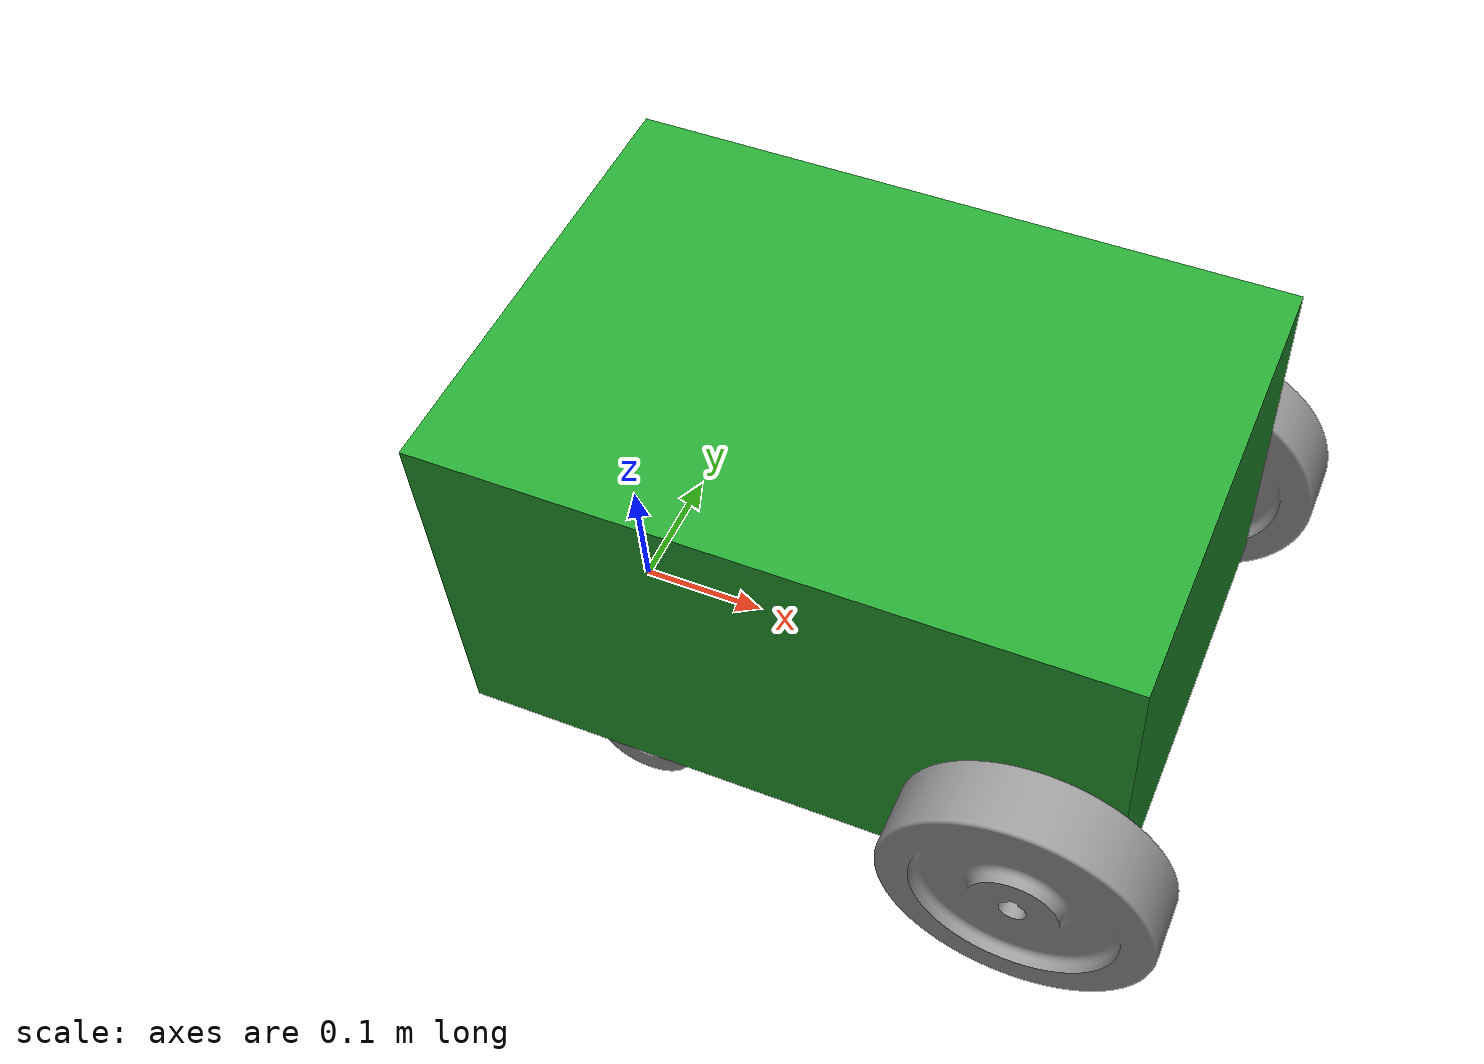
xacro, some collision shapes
<?xml version="1.0"?>

<robot xmlns:xacro="http://www.ros.org/wiki/xacro">

    <xacro:property name="base_length" value="1.18" />
    <xacro:property name="base_width" value="0.3" />
    <xacro:property name="base_height" value="0.001" />
    <xacro:property name="wheel_radius" value="0.1" />
    <xacro:property name="wheel_length" value="0.05" />

    <link name="base_link">
        <visual>
            <geometry>
                <mesh filename="package://my_robot_description/urdf/Chassis2.stl" scale="0.001 0.001 0.001" />
            </geometry>
            <origin xyz="0 0 ${base_height / 2}" rpy="0 0 1.57" />
            <material name="green" />
        </visual>

        <collision>
            <geometry>
                <box size="0.35 0.5 0.28" />
            </geometry>
            <origin xyz="0.2 0 0.08" rpy="0 0 1.57" />

        </collision>

        <inertial>
            <mass value="30" />
            <inertia ixx="372139.2" ixy="-347.727" ixz="350.64" iyy="258387.4" iyz="14259.7" izz="447654.2" />
        </inertial>

    </link>

    <xacro:macro name="wheel_link" params="prefix">
        <link name="${prefix}_wheel_link">
            <visual>
                <geometry>
                    <mesh filename="package://my_robot_description/urdf/rear_wheel.stl" scale="0.001 0.001 0.001" />
                </geometry>
                <origin xyz="0 0 0" rpy="${pi / 2} 0 0" />
                <material name="grey" />
            </visual>

            <collision>
                <geometry>
                    <box size="0.2 0.2 0.2" />
                </geometry>
                <origin xyz="0 0 0" rpy="0 0 0" />
            </collision>

            <inertial>
                <mass value="1" />
                <inertia ixx="14346.1" ixy="0" ixz="0" iyy="7606" iyz="0" izz="7606" />
            </inertial>

        </link>

    </xacro:macro>

    <xacro:wheel_link prefix="left" />
    <xacro:wheel_link prefix="right" />

    <link name="fourth_link">
        <visual>
            <geometry>
                <mesh filename="package://my_robot_description/urdf/front_wheel.stl" scale="0.001 0.001 0.001" />
            </geometry>
            <origin xyz="0 0 0" rpy="1.57 0 0" />
            <material name="grey" />
        </visual>

            <collision>
                <geometry>
                    <box size="0.2 0.2 0.2" />
                </geometry>
            <origin xyz="0 0 0" rpy="0 0 0" />
            </collision>

        <inertial>
            <mass value="2" />
            <inertia ixx="112.3" ixy="0" ixz="0" iyy="112" iyz="0" izz="197" />
        </inertial>

    </link>

    <link name="fifth_link">
        <visual>
            <geometry>
                <mesh filename="package://my_robot_description/urdf/front_wheel.stl" scale="0.001 0.001 0.001" />
            </geometry>
            <origin xyz="0 0 0" rpy="1.57 0 0" />
            <material name="grey" />
        </visual>

            <collision>
                <geometry>
                    <box size="0.2 0.2 0.2" />
                </geometry>
            <origin xyz="0 0 0" rpy="0 0 0" />
            </collision>

        <inertial>
            <mass value="2" />
            <inertia ixx="1" ixy="0" ixz="0" iyy="1" iyz="0" izz="1" />
        </inertial>

    </link>

    <link name="base_footprint" />

    <joint name="base_second_joint" type="continuous">
        <parent link="base_link" />
        <child link="left_wheel_link" />
        <origin xyz="${base_length / 3} ${((base_width) + wheel_length) / 2} 0" rpy="0 0 3.14" />
        <axis xyz="0 -1 0" />
    </joint>

    <joint name="second_third_joint" type="continuous">
        <parent link="base_link" />
        <child link="right_wheel_link" />
        <origin xyz="${base_length / 3} ${(-(base_width) - wheel_length) / 2} 0" rpy="0 0 0" />
        <axis xyz="0 1 0" />
    </joint>

    <joint name="base_third_joint" type="continuous">
        <parent link="base_link" />
        <child link="fourth_link" />
        <origin xyz="0.089 0.145 -0.05" rpy="0 0 0" />
        <axis xyz="0 1 0" />
    </joint>

    <joint name="base_fouth_joint" type="continuous">
        <parent link="base_link" />
        <child link="fifth_link" />
        <origin xyz="0.089 -0.145 -0.05" rpy="3.14 0 0" />
        <axis xyz="0 -1 0" />
    </joint>

    <joint name="base_footprint_base_link" type="fixed">
        <parent link="base_footprint" />
        <child link="base_link" />
        <origin xyz="0 0 0.1" rpy="0 0 0" />
    </joint>

</robot>
